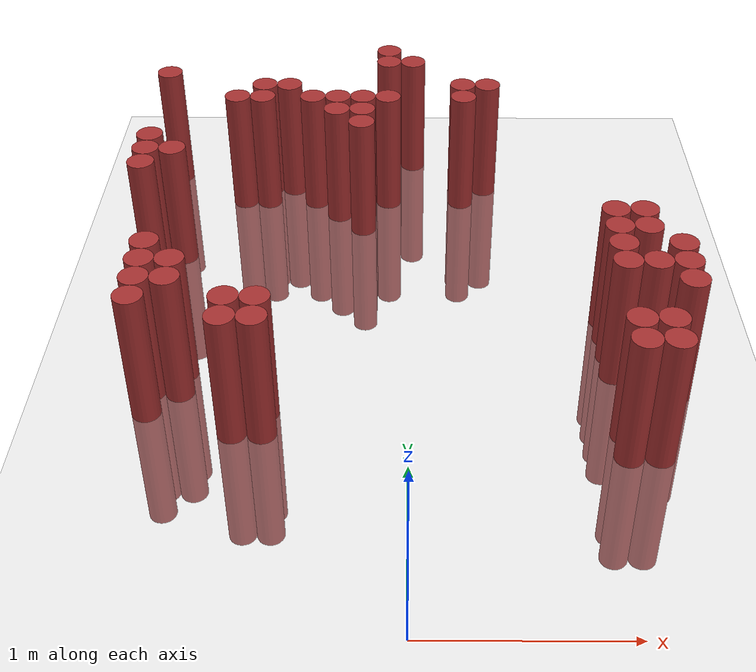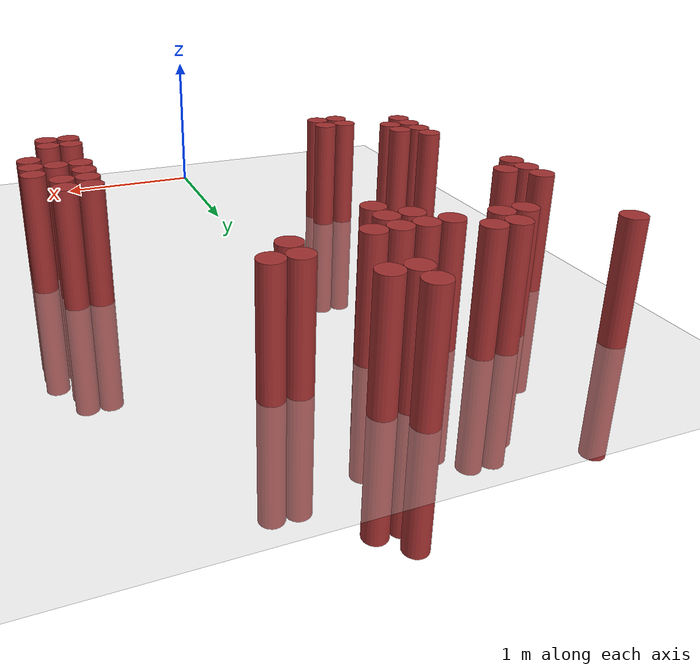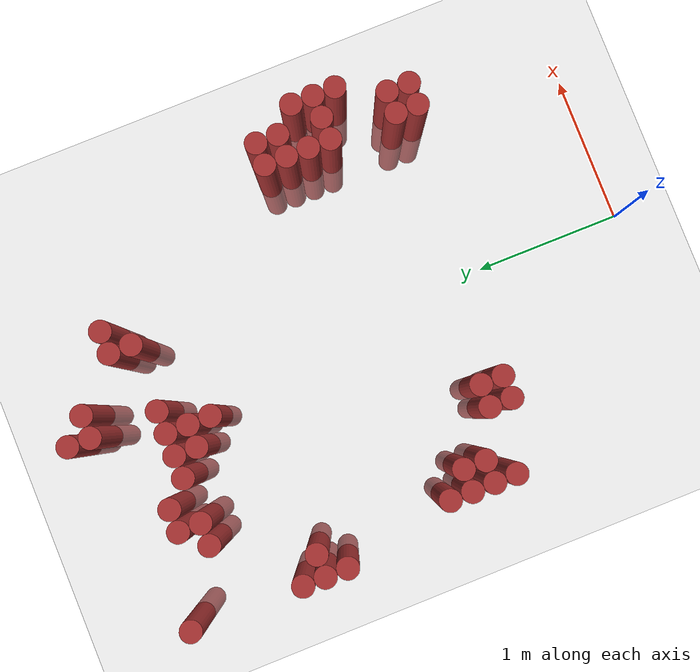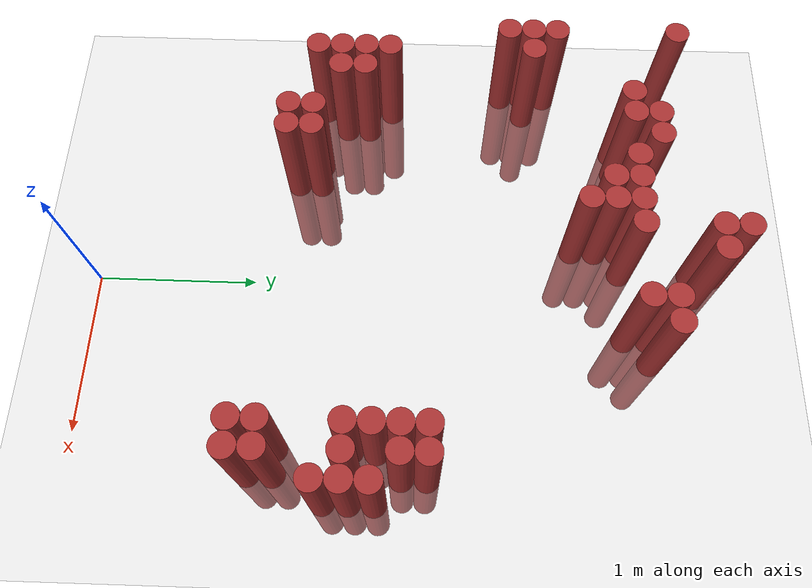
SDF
<sdf version="1.6">
 <world name="default">
  <model name="ground_plane">
   <static>1</static>
   <link name="link">
    <collision name="collision">
     <geometry><plane><normal>0 0 1</normal><size>100 100</size></plane></geometry>
     <surface><friction><ode><mu>100</mu><mu2>50</mu2></ode></friction></surface>
    </collision>
    <visual name="visual">
     <cast_shadows>0</cast_shadows>
     <geometry><plane><normal>0 0 1</normal><size>100 100</size></plane></geometry>
     <material>
      <script><uri>file://media/materials/scripts/gazebo.material</uri><name>Gazebo/Grey</name></script>
     </material>
    </visual>
   </link>
  </model>
  <model name="unit_cylinder_158">
   <static>1</static>
   <pose>-1.475000 2.575000 0.000000 0.000000 0.000000 0.000000</pose>
   <link name="link">
    <inertial>
     <mass>1</mass>
     <inertia><ixx>0.145833</ixx><ixy>0</ixy><ixz>0</ixz><iyy>0.145833</iyy><iyz>0</iyz><izz>0.125</izz></inertia>
    </inertial>
    <collision name="collision">
     <geometry><cylinder><radius>0.075000</radius><length>1.5</length></cylinder></geometry>
    </collision>
    <visual name="visual">
     <geometry><cylinder><radius>0.075000</radius><length>1.5</length></cylinder></geometry>
     <material>
      <ambient>0.648000 0.192000 0.192000 1</ambient>
      <diffuse>0.648000 0.192000 0.192000 1</diffuse>
     </material>
     <material>
      <script><name>Gazebo/Grey</name><uri>file://media/materials/scripts/gazebo.material</uri></script>
     </material>
    </visual>
   </link>
  </model>
  <model name="unit_cylinder_159">
   <static>1</static>
   <pose>-1.475000 2.725000 0.000000 0.000000 0.000000 0.000000</pose>
   <link name="link">
    <inertial>
     <mass>1</mass>
     <inertia><ixx>0.145833</ixx><ixy>0</ixy><ixz>0</ixz><iyy>0.145833</iyy><iyz>0</iyz><izz>0.125</izz></inertia>
    </inertial>
    <collision name="collision">
     <geometry><cylinder><radius>0.075000</radius><length>1.5</length></cylinder></geometry>
    </collision>
    <visual name="visual">
     <geometry><cylinder><radius>0.075000</radius><length>1.5</length></cylinder></geometry>
     <material>
      <ambient>0.648000 0.192000 0.192000 1</ambient>
      <diffuse>0.648000 0.192000 0.192000 1</diffuse>
     </material>
     <material>
      <script><name>Gazebo/Grey</name><uri>file://media/materials/scripts/gazebo.material</uri></script>
     </material>
    </visual>
   </link>
  </model>
  <model name="unit_cylinder_160">
   <static>1</static>
   <pose>-1.475000 2.875000 0.000000 0.000000 0.000000 0.000000</pose>
   <link name="link">
    <inertial>
     <mass>1</mass>
     <inertia><ixx>0.145833</ixx><ixy>0</ixy><ixz>0</ixz><iyy>0.145833</iyy><iyz>0</iyz><izz>0.125</izz></inertia>
    </inertial>
    <collision name="collision">
     <geometry><cylinder><radius>0.075000</radius><length>1.5</length></cylinder></geometry>
    </collision>
    <visual name="visual">
     <geometry><cylinder><radius>0.075000</radius><length>1.5</length></cylinder></geometry>
     <material>
      <ambient>0.648000 0.192000 0.192000 1</ambient>
      <diffuse>0.648000 0.192000 0.192000 1</diffuse>
     </material>
     <material>
      <script><name>Gazebo/Grey</name><uri>file://media/materials/scripts/gazebo.material</uri></script>
     </material>
    </visual>
   </link>
  </model>
  <model name="unit_cylinder_161">
   <static>1</static>
   <pose>-1.475000 3.625000 0.000000 0.000000 0.000000 0.000000</pose>
   <link name="link">
    <inertial>
     <mass>1</mass>
     <inertia><ixx>0.145833</ixx><ixy>0</ixy><ixz>0</ixz><iyy>0.145833</iyy><iyz>0</iyz><izz>0.125</izz></inertia>
    </inertial>
    <collision name="collision">
     <geometry><cylinder><radius>0.075000</radius><length>1.5</length></cylinder></geometry>
    </collision>
    <visual name="visual">
     <geometry><cylinder><radius>0.075000</radius><length>1.5</length></cylinder></geometry>
     <material>
      <ambient>0.648000 0.192000 0.192000 1</ambient>
      <diffuse>0.648000 0.192000 0.192000 1</diffuse>
     </material>
     <material>
      <script><name>Gazebo/Grey</name><uri>file://media/materials/scripts/gazebo.material</uri></script>
     </material>
    </visual>
   </link>
  </model>
  <model name="unit_cylinder_165">
   <static>1</static>
   <pose>-1.325000 1.375000 0.000000 0.000000 0.000000 0.000000</pose>
   <link name="link">
    <inertial>
     <mass>1</mass>
     <inertia><ixx>0.145833</ixx><ixy>0</ixy><ixz>0</ixz><iyy>0.145833</iyy><iyz>0</iyz><izz>0.125</izz></inertia>
    </inertial>
    <collision name="collision">
     <geometry><cylinder><radius>0.075000</radius><length>1.5</length></cylinder></geometry>
    </collision>
    <visual name="visual">
     <geometry><cylinder><radius>0.075000</radius><length>1.5</length></cylinder></geometry>
     <material>
      <ambient>0.648000 0.192000 0.192000 1</ambient>
      <diffuse>0.648000 0.192000 0.192000 1</diffuse>
     </material>
     <material>
      <script><name>Gazebo/Grey</name><uri>file://media/materials/scripts/gazebo.material</uri></script>
     </material>
    </visual>
   </link>
  </model>
  <model name="unit_cylinder_166">
   <static>1</static>
   <pose>-1.325000 1.525000 0.000000 0.000000 0.000000 0.000000</pose>
   <link name="link">
    <inertial>
     <mass>1</mass>
     <inertia><ixx>0.145833</ixx><ixy>0</ixy><ixz>0</ixz><iyy>0.145833</iyy><iyz>0</iyz><izz>0.125</izz></inertia>
    </inertial>
    <collision name="collision">
     <geometry><cylinder><radius>0.075000</radius><length>1.5</length></cylinder></geometry>
    </collision>
    <visual name="visual">
     <geometry><cylinder><radius>0.075000</radius><length>1.5</length></cylinder></geometry>
     <material>
      <ambient>0.648000 0.192000 0.192000 1</ambient>
      <diffuse>0.648000 0.192000 0.192000 1</diffuse>
     </material>
     <material>
      <script><name>Gazebo/Grey</name><uri>file://media/materials/scripts/gazebo.material</uri></script>
     </material>
    </visual>
   </link>
  </model>
  <model name="unit_cylinder_167">
   <static>1</static>
   <pose>-1.325000 1.675000 0.000000 0.000000 0.000000 0.000000</pose>
   <link name="link">
    <inertial>
     <mass>1</mass>
     <inertia><ixx>0.145833</ixx><ixy>0</ixy><ixz>0</ixz><iyy>0.145833</iyy><iyz>0</iyz><izz>0.125</izz></inertia>
    </inertial>
    <collision name="collision">
     <geometry><cylinder><radius>0.075000</radius><length>1.5</length></cylinder></geometry>
    </collision>
    <visual name="visual">
     <geometry><cylinder><radius>0.075000</radius><length>1.5</length></cylinder></geometry>
     <material>
      <ambient>0.648000 0.192000 0.192000 1</ambient>
      <diffuse>0.648000 0.192000 0.192000 1</diffuse>
     </material>
     <material>
      <script><name>Gazebo/Grey</name><uri>file://media/materials/scripts/gazebo.material</uri></script>
     </material>
    </visual>
   </link>
  </model>
  <model name="unit_cylinder_168">
   <static>1</static>
   <pose>-1.325000 1.825000 0.000000 0.000000 0.000000 0.000000</pose>
   <link name="link">
    <inertial>
     <mass>1</mass>
     <inertia><ixx>0.145833</ixx><ixy>0</ixy><ixz>0</ixz><iyy>0.145833</iyy><iyz>0</iyz><izz>0.125</izz></inertia>
    </inertial>
    <collision name="collision">
     <geometry><cylinder><radius>0.075000</radius><length>1.5</length></cylinder></geometry>
    </collision>
    <visual name="visual">
     <geometry><cylinder><radius>0.075000</radius><length>1.5</length></cylinder></geometry>
     <material>
      <ambient>0.648000 0.192000 0.192000 1</ambient>
      <diffuse>0.648000 0.192000 0.192000 1</diffuse>
     </material>
     <material>
      <script><name>Gazebo/Grey</name><uri>file://media/materials/scripts/gazebo.material</uri></script>
     </material>
    </visual>
   </link>
  </model>
  <model name="unit_cylinder_169">
   <static>1</static>
   <pose>-1.325000 2.725000 0.000000 0.000000 0.000000 0.000000</pose>
   <link name="link">
    <inertial>
     <mass>1</mass>
     <inertia><ixx>0.145833</ixx><ixy>0</ixy><ixz>0</ixz><iyy>0.145833</iyy><iyz>0</iyz><izz>0.125</izz></inertia>
    </inertial>
    <collision name="collision">
     <geometry><cylinder><radius>0.075000</radius><length>1.5</length></cylinder></geometry>
    </collision>
    <visual name="visual">
     <geometry><cylinder><radius>0.075000</radius><length>1.5</length></cylinder></geometry>
     <material>
      <ambient>0.648000 0.192000 0.192000 1</ambient>
      <diffuse>0.648000 0.192000 0.192000 1</diffuse>
     </material>
     <material>
      <script><name>Gazebo/Grey</name><uri>file://media/materials/scripts/gazebo.material</uri></script>
     </material>
    </visual>
   </link>
  </model>
  <model name="unit_cylinder_172">
   <static>1</static>
   <pose>-1.175000 1.525000 0.000000 0.000000 0.000000 0.000000</pose>
   <link name="link">
    <inertial>
     <mass>1</mass>
     <inertia><ixx>0.145833</ixx><ixy>0</ixy><ixz>0</ixz><iyy>0.145833</iyy><iyz>0</iyz><izz>0.125</izz></inertia>
    </inertial>
    <collision name="collision">
     <geometry><cylinder><radius>0.075000</radius><length>1.5</length></cylinder></geometry>
    </collision>
    <visual name="visual">
     <geometry><cylinder><radius>0.075000</radius><length>1.5</length></cylinder></geometry>
     <material>
      <ambient>0.648000 0.192000 0.192000 1</ambient>
      <diffuse>0.648000 0.192000 0.192000 1</diffuse>
     </material>
     <material>
      <script><name>Gazebo/Grey</name><uri>file://media/materials/scripts/gazebo.material</uri></script>
     </material>
    </visual>
   </link>
  </model>
  <model name="unit_cylinder_173">
   <static>1</static>
   <pose>-1.175000 1.675000 0.000000 0.000000 0.000000 0.000000</pose>
   <link name="link">
    <inertial>
     <mass>1</mass>
     <inertia><ixx>0.145833</ixx><ixy>0</ixy><ixz>0</ixz><iyy>0.145833</iyy><iyz>0</iyz><izz>0.125</izz></inertia>
    </inertial>
    <collision name="collision">
     <geometry><cylinder><radius>0.075000</radius><length>1.5</length></cylinder></geometry>
    </collision>
    <visual name="visual">
     <geometry><cylinder><radius>0.075000</radius><length>1.5</length></cylinder></geometry>
     <material>
      <ambient>0.648000 0.192000 0.192000 1</ambient>
      <diffuse>0.648000 0.192000 0.192000 1</diffuse>
     </material>
     <material>
      <script><name>Gazebo/Grey</name><uri>file://media/materials/scripts/gazebo.material</uri></script>
     </material>
    </visual>
   </link>
  </model>
  <model name="unit_cylinder_175">
   <static>1</static>
   <pose>-1.025000 3.325000 0.000000 0.000000 0.000000 0.000000</pose>
   <link name="link">
    <inertial>
     <mass>1</mass>
     <inertia><ixx>0.145833</ixx><ixy>0</ixy><ixz>0</ixz><iyy>0.145833</iyy><iyz>0</iyz><izz>0.125</izz></inertia>
    </inertial>
    <collision name="collision">
     <geometry><cylinder><radius>0.075000</radius><length>1.5</length></cylinder></geometry>
    </collision>
    <visual name="visual">
     <geometry><cylinder><radius>0.075000</radius><length>1.5</length></cylinder></geometry>
     <material>
      <ambient>0.648000 0.192000 0.192000 1</ambient>
      <diffuse>0.648000 0.192000 0.192000 1</diffuse>
     </material>
     <material>
      <script><name>Gazebo/Grey</name><uri>file://media/materials/scripts/gazebo.material</uri></script>
     </material>
    </visual>
   </link>
  </model>
  <model name="unit_cylinder_178">
   <static>1</static>
   <pose>-0.875000 1.225000 0.000000 0.000000 0.000000 0.000000</pose>
   <link name="link">
    <inertial>
     <mass>1</mass>
     <inertia><ixx>0.145833</ixx><ixy>0</ixy><ixz>0</ixz><iyy>0.145833</iyy><iyz>0</iyz><izz>0.125</izz></inertia>
    </inertial>
    <collision name="collision">
     <geometry><cylinder><radius>0.075000</radius><length>1.5</length></cylinder></geometry>
    </collision>
    <visual name="visual">
     <geometry><cylinder><radius>0.075000</radius><length>1.5</length></cylinder></geometry>
     <material>
      <ambient>0.648000 0.192000 0.192000 1</ambient>
      <diffuse>0.648000 0.192000 0.192000 1</diffuse>
     </material>
     <material>
      <script><name>Gazebo/Grey</name><uri>file://media/materials/scripts/gazebo.material</uri></script>
     </material>
    </visual>
   </link>
  </model>
  <model name="unit_cylinder_179">
   <static>1</static>
   <pose>-0.875000 1.375000 0.000000 0.000000 0.000000 0.000000</pose>
   <link name="link">
    <inertial>
     <mass>1</mass>
     <inertia><ixx>0.145833</ixx><ixy>0</ixy><ixz>0</ixz><iyy>0.145833</iyy><iyz>0</iyz><izz>0.125</izz></inertia>
    </inertial>
    <collision name="collision">
     <geometry><cylinder><radius>0.075000</radius><length>1.5</length></cylinder></geometry>
    </collision>
    <visual name="visual">
     <geometry><cylinder><radius>0.075000</radius><length>1.5</length></cylinder></geometry>
     <material>
      <ambient>0.648000 0.192000 0.192000 1</ambient>
      <diffuse>0.648000 0.192000 0.192000 1</diffuse>
     </material>
     <material>
      <script><name>Gazebo/Grey</name><uri>file://media/materials/scripts/gazebo.material</uri></script>
     </material>
    </visual>
   </link>
  </model>
  <model name="unit_cylinder_180">
   <static>1</static>
   <pose>-0.875000 3.325000 0.000000 0.000000 0.000000 0.000000</pose>
   <link name="link">
    <inertial>
     <mass>1</mass>
     <inertia><ixx>0.145833</ixx><ixy>0</ixy><ixz>0</ixz><iyy>0.145833</iyy><iyz>0</iyz><izz>0.125</izz></inertia>
    </inertial>
    <collision name="collision">
     <geometry><cylinder><radius>0.075000</radius><length>1.5</length></cylinder></geometry>
    </collision>
    <visual name="visual">
     <geometry><cylinder><radius>0.075000</radius><length>1.5</length></cylinder></geometry>
     <material>
      <ambient>0.648000 0.192000 0.192000 1</ambient>
      <diffuse>0.648000 0.192000 0.192000 1</diffuse>
     </material>
     <material>
      <script><name>Gazebo/Grey</name><uri>file://media/materials/scripts/gazebo.material</uri></script>
     </material>
    </visual>
   </link>
  </model>
  <model name="unit_cylinder_181">
   <static>1</static>
   <pose>-0.875000 3.475000 0.000000 0.000000 0.000000 0.000000</pose>
   <link name="link">
    <inertial>
     <mass>1</mass>
     <inertia><ixx>0.145833</ixx><ixy>0</ixy><ixz>0</ixz><iyy>0.145833</iyy><iyz>0</iyz><izz>0.125</izz></inertia>
    </inertial>
    <collision name="collision">
     <geometry><cylinder><radius>0.075000</radius><length>1.5</length></cylinder></geometry>
    </collision>
    <visual name="visual">
     <geometry><cylinder><radius>0.075000</radius><length>1.5</length></cylinder></geometry>
     <material>
      <ambient>0.648000 0.192000 0.192000 1</ambient>
      <diffuse>0.648000 0.192000 0.192000 1</diffuse>
     </material>
     <material>
      <script><name>Gazebo/Grey</name><uri>file://media/materials/scripts/gazebo.material</uri></script>
     </material>
    </visual>
   </link>
  </model>
  <model name="unit_cylinder_183">
   <static>1</static>
   <pose>-0.725000 1.225000 0.000000 0.000000 0.000000 0.000000</pose>
   <link name="link">
    <inertial>
     <mass>1</mass>
     <inertia><ixx>0.145833</ixx><ixy>0</ixy><ixz>0</ixz><iyy>0.145833</iyy><iyz>0</iyz><izz>0.125</izz></inertia>
    </inertial>
    <collision name="collision">
     <geometry><cylinder><radius>0.075000</radius><length>1.5</length></cylinder></geometry>
    </collision>
    <visual name="visual">
     <geometry><cylinder><radius>0.075000</radius><length>1.5</length></cylinder></geometry>
     <material>
      <ambient>0.648000 0.192000 0.192000 1</ambient>
      <diffuse>0.648000 0.192000 0.192000 1</diffuse>
     </material>
     <material>
      <script><name>Gazebo/Grey</name><uri>file://media/materials/scripts/gazebo.material</uri></script>
     </material>
    </visual>
   </link>
  </model>
  <model name="unit_cylinder_184">
   <static>1</static>
   <pose>-0.725000 1.375000 0.000000 0.000000 0.000000 0.000000</pose>
   <link name="link">
    <inertial>
     <mass>1</mass>
     <inertia><ixx>0.145833</ixx><ixy>0</ixy><ixz>0</ixz><iyy>0.145833</iyy><iyz>0</iyz><izz>0.125</izz></inertia>
    </inertial>
    <collision name="collision">
     <geometry><cylinder><radius>0.075000</radius><length>1.5</length></cylinder></geometry>
    </collision>
    <visual name="visual">
     <geometry><cylinder><radius>0.075000</radius><length>1.5</length></cylinder></geometry>
     <material>
      <ambient>0.648000 0.192000 0.192000 1</ambient>
      <diffuse>0.648000 0.192000 0.192000 1</diffuse>
     </material>
     <material>
      <script><name>Gazebo/Grey</name><uri>file://media/materials/scripts/gazebo.material</uri></script>
     </material>
    </visual>
   </link>
  </model>
  <model name="unit_cylinder_185">
   <static>1</static>
   <pose>-0.725000 3.475000 0.000000 0.000000 0.000000 0.000000</pose>
   <link name="link">
    <inertial>
     <mass>1</mass>
     <inertia><ixx>0.145833</ixx><ixy>0</ixy><ixz>0</ixz><iyy>0.145833</iyy><iyz>0</iyz><izz>0.125</izz></inertia>
    </inertial>
    <collision name="collision">
     <geometry><cylinder><radius>0.075000</radius><length>1.5</length></cylinder></geometry>
    </collision>
    <visual name="visual">
     <geometry><cylinder><radius>0.075000</radius><length>1.5</length></cylinder></geometry>
     <material>
      <ambient>0.648000 0.192000 0.192000 1</ambient>
      <diffuse>0.648000 0.192000 0.192000 1</diffuse>
     </material>
     <material>
      <script><name>Gazebo/Grey</name><uri>file://media/materials/scripts/gazebo.material</uri></script>
     </material>
    </visual>
   </link>
  </model>
  <model name="unit_cylinder_188">
   <static>1</static>
   <pose>-0.575000 3.325000 0.000000 0.000000 0.000000 0.000000</pose>
   <link name="link">
    <inertial>
     <mass>1</mass>
     <inertia><ixx>0.145833</ixx><ixy>0</ixy><ixz>0</ixz><iyy>0.145833</iyy><iyz>0</iyz><izz>0.125</izz></inertia>
    </inertial>
    <collision name="collision">
     <geometry><cylinder><radius>0.075000</radius><length>1.5</length></cylinder></geometry>
    </collision>
    <visual name="visual">
     <geometry><cylinder><radius>0.075000</radius><length>1.5</length></cylinder></geometry>
     <material>
      <ambient>0.648000 0.192000 0.192000 1</ambient>
      <diffuse>0.648000 0.192000 0.192000 1</diffuse>
     </material>
     <material>
      <script><name>Gazebo/Grey</name><uri>file://media/materials/scripts/gazebo.material</uri></script>
     </material>
    </visual>
   </link>
  </model>
  <model name="unit_cylinder_191">
   <static>1</static>
   <pose>-0.425000 3.175000 0.000000 0.000000 0.000000 0.000000</pose>
   <link name="link">
    <inertial>
     <mass>1</mass>
     <inertia><ixx>0.145833</ixx><ixy>0</ixy><ixz>0</ixz><iyy>0.145833</iyy><iyz>0</iyz><izz>0.125</izz></inertia>
    </inertial>
    <collision name="collision">
     <geometry><cylinder><radius>0.075000</radius><length>1.5</length></cylinder></geometry>
    </collision>
    <visual name="visual">
     <geometry><cylinder><radius>0.075000</radius><length>1.5</length></cylinder></geometry>
     <material>
      <ambient>0.648000 0.192000 0.192000 1</ambient>
      <diffuse>0.648000 0.192000 0.192000 1</diffuse>
     </material>
     <material>
      <script><name>Gazebo/Grey</name><uri>file://media/materials/scripts/gazebo.material</uri></script>
     </material>
    </visual>
   </link>
  </model>
  <model name="unit_cylinder_192">
   <static>1</static>
   <pose>-0.425000 3.325000 0.000000 0.000000 0.000000 0.000000</pose>
   <link name="link">
    <inertial>
     <mass>1</mass>
     <inertia><ixx>0.145833</ixx><ixy>0</ixy><ixz>0</ixz><iyy>0.145833</iyy><iyz>0</iyz><izz>0.125</izz></inertia>
    </inertial>
    <collision name="collision">
     <geometry><cylinder><radius>0.075000</radius><length>1.5</length></cylinder></geometry>
    </collision>
    <visual name="visual">
     <geometry><cylinder><radius>0.075000</radius><length>1.5</length></cylinder></geometry>
     <material>
      <ambient>0.648000 0.192000 0.192000 1</ambient>
      <diffuse>0.648000 0.192000 0.192000 1</diffuse>
     </material>
     <material>
      <script><name>Gazebo/Grey</name><uri>file://media/materials/scripts/gazebo.material</uri></script>
     </material>
    </visual>
   </link>
  </model>
  <model name="unit_cylinder_194">
   <static>1</static>
   <pose>-0.275000 3.025000 0.000000 0.000000 0.000000 0.000000</pose>
   <link name="link">
    <inertial>
     <mass>1</mass>
     <inertia><ixx>0.145833</ixx><ixy>0</ixy><ixz>0</ixz><iyy>0.145833</iyy><iyz>0</iyz><izz>0.125</izz></inertia>
    </inertial>
    <collision name="collision">
     <geometry><cylinder><radius>0.075000</radius><length>1.5</length></cylinder></geometry>
    </collision>
    <visual name="visual">
     <geometry><cylinder><radius>0.075000</radius><length>1.5</length></cylinder></geometry>
     <material>
      <ambient>0.648000 0.192000 0.192000 1</ambient>
      <diffuse>0.648000 0.192000 0.192000 1</diffuse>
     </material>
     <material>
      <script><name>Gazebo/Grey</name><uri>file://media/materials/scripts/gazebo.material</uri></script>
     </material>
    </visual>
   </link>
  </model>
  <model name="unit_cylinder_195">
   <static>1</static>
   <pose>-0.275000 3.175000 0.000000 0.000000 0.000000 0.000000</pose>
   <link name="link">
    <inertial>
     <mass>1</mass>
     <inertia><ixx>0.145833</ixx><ixy>0</ixy><ixz>0</ixz><iyy>0.145833</iyy><iyz>0</iyz><izz>0.125</izz></inertia>
    </inertial>
    <collision name="collision">
     <geometry><cylinder><radius>0.075000</radius><length>1.5</length></cylinder></geometry>
    </collision>
    <visual name="visual">
     <geometry><cylinder><radius>0.075000</radius><length>1.5</length></cylinder></geometry>
     <material>
      <ambient>0.648000 0.192000 0.192000 1</ambient>
      <diffuse>0.648000 0.192000 0.192000 1</diffuse>
     </material>
     <material>
      <script><name>Gazebo/Grey</name><uri>file://media/materials/scripts/gazebo.material</uri></script>
     </material>
    </visual>
   </link>
  </model>
  <model name="unit_cylinder_196">
   <static>1</static>
   <pose>-0.275000 3.325000 0.000000 0.000000 0.000000 0.000000</pose>
   <link name="link">
    <inertial>
     <mass>1</mass>
     <inertia><ixx>0.145833</ixx><ixy>0</ixy><ixz>0</ixz><iyy>0.145833</iyy><iyz>0</iyz><izz>0.125</izz></inertia>
    </inertial>
    <collision name="collision">
     <geometry><cylinder><radius>0.075000</radius><length>1.5</length></cylinder></geometry>
    </collision>
    <visual name="visual">
     <geometry><cylinder><radius>0.075000</radius><length>1.5</length></cylinder></geometry>
     <material>
      <ambient>0.648000 0.192000 0.192000 1</ambient>
      <diffuse>0.648000 0.192000 0.192000 1</diffuse>
     </material>
     <material>
      <script><name>Gazebo/Grey</name><uri>file://media/materials/scripts/gazebo.material</uri></script>
     </material>
    </visual>
   </link>
  </model>
  <model name="unit_cylinder_197">
   <static>1</static>
   <pose>-0.125000 3.325000 0.000000 0.000000 0.000000 0.000000</pose>
   <link name="link">
    <inertial>
     <mass>1</mass>
     <inertia><ixx>0.145833</ixx><ixy>0</ixy><ixz>0</ixz><iyy>0.145833</iyy><iyz>0</iyz><izz>0.125</izz></inertia>
    </inertial>
    <collision name="collision">
     <geometry><cylinder><radius>0.075000</radius><length>1.5</length></cylinder></geometry>
    </collision>
    <visual name="visual">
     <geometry><cylinder><radius>0.075000</radius><length>1.5</length></cylinder></geometry>
     <material>
      <ambient>0.648000 0.192000 0.192000 1</ambient>
      <diffuse>0.648000 0.192000 0.192000 1</diffuse>
     </material>
     <material>
      <script><name>Gazebo/Grey</name><uri>file://media/materials/scripts/gazebo.material</uri></script>
     </material>
    </visual>
   </link>
  </model>
  <model name="unit_cylinder_198">
   <static>1</static>
   <pose>-0.125000 3.775000 0.000000 0.000000 0.000000 0.000000</pose>
   <link name="link">
    <inertial>
     <mass>1</mass>
     <inertia><ixx>0.145833</ixx><ixy>0</ixy><ixz>0</ixz><iyy>0.145833</iyy><iyz>0</iyz><izz>0.125</izz></inertia>
    </inertial>
    <collision name="collision">
     <geometry><cylinder><radius>0.075000</radius><length>1.5</length></cylinder></geometry>
    </collision>
    <visual name="visual">
     <geometry><cylinder><radius>0.075000</radius><length>1.5</length></cylinder></geometry>
     <material>
      <ambient>0.648000 0.192000 0.192000 1</ambient>
      <diffuse>0.648000 0.192000 0.192000 1</diffuse>
     </material>
     <material>
      <script><name>Gazebo/Grey</name><uri>file://media/materials/scripts/gazebo.material</uri></script>
     </material>
    </visual>
   </link>
  </model>
  <model name="unit_cylinder_199">
   <static>1</static>
   <pose>-0.125000 3.925000 0.000000 0.000000 0.000000 0.000000</pose>
   <link name="link">
    <inertial>
     <mass>1</mass>
     <inertia><ixx>0.145833</ixx><ixy>0</ixy><ixz>0</ixz><iyy>0.145833</iyy><iyz>0</iyz><izz>0.125</izz></inertia>
    </inertial>
    <collision name="collision">
     <geometry><cylinder><radius>0.075000</radius><length>1.5</length></cylinder></geometry>
    </collision>
    <visual name="visual">
     <geometry><cylinder><radius>0.075000</radius><length>1.5</length></cylinder></geometry>
     <material>
      <ambient>0.648000 0.192000 0.192000 1</ambient>
      <diffuse>0.648000 0.192000 0.192000 1</diffuse>
     </material>
     <material>
      <script><name>Gazebo/Grey</name><uri>file://media/materials/scripts/gazebo.material</uri></script>
     </material>
    </visual>
   </link>
  </model>
  <model name="unit_cylinder_200">
   <static>1</static>
   <pose>0.025000 3.775000 0.000000 0.000000 0.000000 0.000000</pose>
   <link name="link">
    <inertial>
     <mass>1</mass>
     <inertia><ixx>0.145833</ixx><ixy>0</ixy><ixz>0</ixz><iyy>0.145833</iyy><iyz>0</iyz><izz>0.125</izz></inertia>
    </inertial>
    <collision name="collision">
     <geometry><cylinder><radius>0.075000</radius><length>1.5</length></cylinder></geometry>
    </collision>
    <visual name="visual">
     <geometry><cylinder><radius>0.075000</radius><length>1.5</length></cylinder></geometry>
     <material>
      <ambient>0.648000 0.192000 0.192000 1</ambient>
      <diffuse>0.648000 0.192000 0.192000 1</diffuse>
     </material>
     <material>
      <script><name>Gazebo/Grey</name><uri>file://media/materials/scripts/gazebo.material</uri></script>
     </material>
    </visual>
   </link>
  </model>
  <model name="unit_cylinder_201">
   <static>1</static>
   <pose>0.325000 3.325000 0.000000 0.000000 0.000000 0.000000</pose>
   <link name="link">
    <inertial>
     <mass>1</mass>
     <inertia><ixx>0.145833</ixx><ixy>0</ixy><ixz>0</ixz><iyy>0.145833</iyy><iyz>0</iyz><izz>0.125</izz></inertia>
    </inertial>
    <collision name="collision">
     <geometry><cylinder><radius>0.075000</radius><length>1.5</length></cylinder></geometry>
    </collision>
    <visual name="visual">
     <geometry><cylinder><radius>0.075000</radius><length>1.5</length></cylinder></geometry>
     <material>
      <ambient>0.648000 0.192000 0.192000 1</ambient>
      <diffuse>0.648000 0.192000 0.192000 1</diffuse>
     </material>
     <material>
      <script><name>Gazebo/Grey</name><uri>file://media/materials/scripts/gazebo.material</uri></script>
     </material>
    </visual>
   </link>
  </model>
  <model name="unit_cylinder_202">
   <static>1</static>
   <pose>0.325000 3.475000 0.000000 0.000000 0.000000 0.000000</pose>
   <link name="link">
    <inertial>
     <mass>1</mass>
     <inertia><ixx>0.145833</ixx><ixy>0</ixy><ixz>0</ixz><iyy>0.145833</iyy><iyz>0</iyz><izz>0.125</izz></inertia>
    </inertial>
    <collision name="collision">
     <geometry><cylinder><radius>0.075000</radius><length>1.5</length></cylinder></geometry>
    </collision>
    <visual name="visual">
     <geometry><cylinder><radius>0.075000</radius><length>1.5</length></cylinder></geometry>
     <material>
      <ambient>0.648000 0.192000 0.192000 1</ambient>
      <diffuse>0.648000 0.192000 0.192000 1</diffuse>
     </material>
     <material>
      <script><name>Gazebo/Grey</name><uri>file://media/materials/scripts/gazebo.material</uri></script>
     </material>
    </visual>
   </link>
  </model>
  <model name="unit_cylinder_203">
   <static>1</static>
   <pose>0.475000 3.475000 0.000000 0.000000 0.000000 0.000000</pose>
   <link name="link">
    <inertial>
     <mass>1</mass>
     <inertia><ixx>0.145833</ixx><ixy>0</ixy><ixz>0</ixz><iyy>0.145833</iyy><iyz>0</iyz><izz>0.125</izz></inertia>
    </inertial>
    <collision name="collision">
     <geometry><cylinder><radius>0.075000</radius><length>1.5</length></cylinder></geometry>
    </collision>
    <visual name="visual">
     <geometry><cylinder><radius>0.075000</radius><length>1.5</length></cylinder></geometry>
     <material>
      <ambient>0.648000 0.192000 0.192000 1</ambient>
      <diffuse>0.648000 0.192000 0.192000 1</diffuse>
     </material>
     <material>
      <script><name>Gazebo/Grey</name><uri>file://media/materials/scripts/gazebo.material</uri></script>
     </material>
    </visual>
   </link>
  </model>
  <model name="unit_cylinder_205">
   <static>1</static>
   <pose>1.075000 1.075000 0.000000 0.000000 0.000000 0.000000</pose>
   <link name="link">
    <inertial>
     <mass>1</mass>
     <inertia><ixx>0.145833</ixx><ixy>0</ixy><ixz>0</ixz><iyy>0.145833</iyy><iyz>0</iyz><izz>0.125</izz></inertia>
    </inertial>
    <collision name="collision">
     <geometry><cylinder><radius>0.075000</radius><length>1.5</length></cylinder></geometry>
    </collision>
    <visual name="visual">
     <geometry><cylinder><radius>0.075000</radius><length>1.5</length></cylinder></geometry>
     <material>
      <ambient>0.648000 0.192000 0.192000 1</ambient>
      <diffuse>0.648000 0.192000 0.192000 1</diffuse>
     </material>
     <material>
      <script><name>Gazebo/Grey</name><uri>file://media/materials/scripts/gazebo.material</uri></script>
     </material>
    </visual>
   </link>
  </model>
  <model name="unit_cylinder_206">
   <static>1</static>
   <pose>1.075000 1.225000 0.000000 0.000000 0.000000 0.000000</pose>
   <link name="link">
    <inertial>
     <mass>1</mass>
     <inertia><ixx>0.145833</ixx><ixy>0</ixy><ixz>0</ixz><iyy>0.145833</iyy><iyz>0</iyz><izz>0.125</izz></inertia>
    </inertial>
    <collision name="collision">
     <geometry><cylinder><radius>0.075000</radius><length>1.5</length></cylinder></geometry>
    </collision>
    <visual name="visual">
     <geometry><cylinder><radius>0.075000</radius><length>1.5</length></cylinder></geometry>
     <material>
      <ambient>0.648000 0.192000 0.192000 1</ambient>
      <diffuse>0.648000 0.192000 0.192000 1</diffuse>
     </material>
     <material>
      <script><name>Gazebo/Grey</name><uri>file://media/materials/scripts/gazebo.material</uri></script>
     </material>
    </visual>
   </link>
  </model>
  <model name="unit_cylinder_207">
   <static>1</static>
   <pose>1.075000 1.675000 0.000000 0.000000 0.000000 0.000000</pose>
   <link name="link">
    <inertial>
     <mass>1</mass>
     <inertia><ixx>0.145833</ixx><ixy>0</ixy><ixz>0</ixz><iyy>0.145833</iyy><iyz>0</iyz><izz>0.125</izz></inertia>
    </inertial>
    <collision name="collision">
     <geometry><cylinder><radius>0.075000</radius><length>1.5</length></cylinder></geometry>
    </collision>
    <visual name="visual">
     <geometry><cylinder><radius>0.075000</radius><length>1.5</length></cylinder></geometry>
     <material>
      <ambient>0.648000 0.192000 0.192000 1</ambient>
      <diffuse>0.648000 0.192000 0.192000 1</diffuse>
     </material>
     <material>
      <script><name>Gazebo/Grey</name><uri>file://media/materials/scripts/gazebo.material</uri></script>
     </material>
    </visual>
   </link>
  </model>
  <model name="unit_cylinder_208">
   <static>1</static>
   <pose>1.075000 1.825000 0.000000 0.000000 0.000000 0.000000</pose>
   <link name="link">
    <inertial>
     <mass>1</mass>
     <inertia><ixx>0.145833</ixx><ixy>0</ixy><ixz>0</ixz><iyy>0.145833</iyy><iyz>0</iyz><izz>0.125</izz></inertia>
    </inertial>
    <collision name="collision">
     <geometry><cylinder><radius>0.075000</radius><length>1.5</length></cylinder></geometry>
    </collision>
    <visual name="visual">
     <geometry><cylinder><radius>0.075000</radius><length>1.5</length></cylinder></geometry>
     <material>
      <ambient>0.648000 0.192000 0.192000 1</ambient>
      <diffuse>0.648000 0.192000 0.192000 1</diffuse>
     </material>
     <material>
      <script><name>Gazebo/Grey</name><uri>file://media/materials/scripts/gazebo.material</uri></script>
     </material>
    </visual>
   </link>
  </model>
  <model name="unit_cylinder_209">
   <static>1</static>
   <pose>1.075000 1.975000 0.000000 0.000000 0.000000 0.000000</pose>
   <link name="link">
    <inertial>
     <mass>1</mass>
     <inertia><ixx>0.145833</ixx><ixy>0</ixy><ixz>0</ixz><iyy>0.145833</iyy><iyz>0</iyz><izz>0.125</izz></inertia>
    </inertial>
    <collision name="collision">
     <geometry><cylinder><radius>0.075000</radius><length>1.5</length></cylinder></geometry>
    </collision>
    <visual name="visual">
     <geometry><cylinder><radius>0.075000</radius><length>1.5</length></cylinder></geometry>
     <material>
      <ambient>0.648000 0.192000 0.192000 1</ambient>
      <diffuse>0.648000 0.192000 0.192000 1</diffuse>
     </material>
     <material>
      <script><name>Gazebo/Grey</name><uri>file://media/materials/scripts/gazebo.material</uri></script>
     </material>
    </visual>
   </link>
  </model>
  <model name="unit_cylinder_210">
   <static>1</static>
   <pose>1.075000 2.125000 0.000000 0.000000 0.000000 0.000000</pose>
   <link name="link">
    <inertial>
     <mass>1</mass>
     <inertia><ixx>0.145833</ixx><ixy>0</ixy><ixz>0</ixz><iyy>0.145833</iyy><iyz>0</iyz><izz>0.125</izz></inertia>
    </inertial>
    <collision name="collision">
     <geometry><cylinder><radius>0.075000</radius><length>1.5</length></cylinder></geometry>
    </collision>
    <visual name="visual">
     <geometry><cylinder><radius>0.075000</radius><length>1.5</length></cylinder></geometry>
     <material>
      <ambient>0.648000 0.192000 0.192000 1</ambient>
      <diffuse>0.648000 0.192000 0.192000 1</diffuse>
     </material>
     <material>
      <script><name>Gazebo/Grey</name><uri>file://media/materials/scripts/gazebo.material</uri></script>
     </material>
    </visual>
   </link>
  </model>
  <model name="unit_cylinder_211">
   <static>1</static>
   <pose>1.225000 1.075000 0.000000 0.000000 0.000000 0.000000</pose>
   <link name="link">
    <inertial>
     <mass>1</mass>
     <inertia><ixx>0.145833</ixx><ixy>0</ixy><ixz>0</ixz><iyy>0.145833</iyy><iyz>0</iyz><izz>0.125</izz></inertia>
    </inertial>
    <collision name="collision">
     <geometry><cylinder><radius>0.075000</radius><length>1.5</length></cylinder></geometry>
    </collision>
    <visual name="visual">
     <geometry><cylinder><radius>0.075000</radius><length>1.5</length></cylinder></geometry>
     <material>
      <ambient>0.648000 0.192000 0.192000 1</ambient>
      <diffuse>0.648000 0.192000 0.192000 1</diffuse>
     </material>
     <material>
      <script><name>Gazebo/Grey</name><uri>file://media/materials/scripts/gazebo.material</uri></script>
     </material>
    </visual>
   </link>
  </model>
  <model name="unit_cylinder_212">
   <static>1</static>
   <pose>1.225000 1.225000 0.000000 0.000000 0.000000 0.000000</pose>
   <link name="link">
    <inertial>
     <mass>1</mass>
     <inertia><ixx>0.145833</ixx><ixy>0</ixy><ixz>0</ixz><iyy>0.145833</iyy><iyz>0</iyz><izz>0.125</izz></inertia>
    </inertial>
    <collision name="collision">
     <geometry><cylinder><radius>0.075000</radius><length>1.5</length></cylinder></geometry>
    </collision>
    <visual name="visual">
     <geometry><cylinder><radius>0.075000</radius><length>1.5</length></cylinder></geometry>
     <material>
      <ambient>0.648000 0.192000 0.192000 1</ambient>
      <diffuse>0.648000 0.192000 0.192000 1</diffuse>
     </material>
     <material>
      <script><name>Gazebo/Grey</name><uri>file://media/materials/scripts/gazebo.material</uri></script>
     </material>
    </visual>
   </link>
  </model>
  <model name="unit_cylinder_213">
   <static>1</static>
   <pose>1.225000 1.675000 0.000000 0.000000 0.000000 0.000000</pose>
   <link name="link">
    <inertial>
     <mass>1</mass>
     <inertia><ixx>0.145833</ixx><ixy>0</ixy><ixz>0</ixz><iyy>0.145833</iyy><iyz>0</iyz><izz>0.125</izz></inertia>
    </inertial>
    <collision name="collision">
     <geometry><cylinder><radius>0.075000</radius><length>1.5</length></cylinder></geometry>
    </collision>
    <visual name="visual">
     <geometry><cylinder><radius>0.075000</radius><length>1.5</length></cylinder></geometry>
     <material>
      <ambient>0.648000 0.192000 0.192000 1</ambient>
      <diffuse>0.648000 0.192000 0.192000 1</diffuse>
     </material>
     <material>
      <script><name>Gazebo/Grey</name><uri>file://media/materials/scripts/gazebo.material</uri></script>
     </material>
    </visual>
   </link>
  </model>
  <model name="unit_cylinder_214">
   <static>1</static>
   <pose>1.225000 1.975000 0.000000 0.000000 0.000000 0.000000</pose>
   <link name="link">
    <inertial>
     <mass>1</mass>
     <inertia><ixx>0.145833</ixx><ixy>0</ixy><ixz>0</ixz><iyy>0.145833</iyy><iyz>0</iyz><izz>0.125</izz></inertia>
    </inertial>
    <collision name="collision">
     <geometry><cylinder><radius>0.075000</radius><length>1.5</length></cylinder></geometry>
    </collision>
    <visual name="visual">
     <geometry><cylinder><radius>0.075000</radius><length>1.5</length></cylinder></geometry>
     <material>
      <ambient>0.648000 0.192000 0.192000 1</ambient>
      <diffuse>0.648000 0.192000 0.192000 1</diffuse>
     </material>
     <material>
      <script><name>Gazebo/Grey</name><uri>file://media/materials/scripts/gazebo.material</uri></script>
     </material>
    </visual>
   </link>
  </model>
  <model name="unit_cylinder_215">
   <static>1</static>
   <pose>1.225000 2.125000 0.000000 0.000000 0.000000 0.000000</pose>
   <link name="link">
    <inertial>
     <mass>1</mass>
     <inertia><ixx>0.145833</ixx><ixy>0</ixy><ixz>0</ixz><iyy>0.145833</iyy><iyz>0</iyz><izz>0.125</izz></inertia>
    </inertial>
    <collision name="collision">
     <geometry><cylinder><radius>0.075000</radius><length>1.5</length></cylinder></geometry>
    </collision>
    <visual name="visual">
     <geometry><cylinder><radius>0.075000</radius><length>1.5</length></cylinder></geometry>
     <material>
      <ambient>0.648000 0.192000 0.192000 1</ambient>
      <diffuse>0.648000 0.192000 0.192000 1</diffuse>
     </material>
     <material>
      <script><name>Gazebo/Grey</name><uri>file://media/materials/scripts/gazebo.material</uri></script>
     </material>
    </visual>
   </link>
  </model>
  <model name="unit_cylinder_217">
   <static>1</static>
   <pose>1.375000 1.525000 0.000000 0.000000 0.000000 0.000000</pose>
   <link name="link">
    <inertial>
     <mass>1</mass>
     <inertia><ixx>0.145833</ixx><ixy>0</ixy><ixz>0</ixz><iyy>0.145833</iyy><iyz>0</iyz><izz>0.125</izz></inertia>
    </inertial>
    <collision name="collision">
     <geometry><cylinder><radius>0.075000</radius><length>1.5</length></cylinder></geometry>
    </collision>
    <visual name="visual">
     <geometry><cylinder><radius>0.075000</radius><length>1.5</length></cylinder></geometry>
     <material>
      <ambient>0.648000 0.192000 0.192000 1</ambient>
      <diffuse>0.648000 0.192000 0.192000 1</diffuse>
     </material>
     <material>
      <script><name>Gazebo/Grey</name><uri>file://media/materials/scripts/gazebo.material</uri></script>
     </material>
    </visual>
   </link>
  </model>
  <model name="unit_cylinder_218">
   <static>1</static>
   <pose>1.375000 1.675000 0.000000 0.000000 0.000000 0.000000</pose>
   <link name="link">
    <inertial>
     <mass>1</mass>
     <inertia><ixx>0.145833</ixx><ixy>0</ixy><ixz>0</ixz><iyy>0.145833</iyy><iyz>0</iyz><izz>0.125</izz></inertia>
    </inertial>
    <collision name="collision">
     <geometry><cylinder><radius>0.075000</radius><length>1.5</length></cylinder></geometry>
    </collision>
    <visual name="visual">
     <geometry><cylinder><radius>0.075000</radius><length>1.5</length></cylinder></geometry>
     <material>
      <ambient>0.648000 0.192000 0.192000 1</ambient>
      <diffuse>0.648000 0.192000 0.192000 1</diffuse>
     </material>
     <material>
      <script><name>Gazebo/Grey</name><uri>file://media/materials/scripts/gazebo.material</uri></script>
     </material>
    </visual>
   </link>
  </model>
  <model name="unit_cylinder_219">
   <static>1</static>
   <pose>1.375000 1.825000 0.000000 0.000000 0.000000 0.000000</pose>
   <link name="link">
    <inertial>
     <mass>1</mass>
     <inertia><ixx>0.145833</ixx><ixy>0</ixy><ixz>0</ixz><iyy>0.145833</iyy><iyz>0</iyz><izz>0.125</izz></inertia>
    </inertial>
    <collision name="collision">
     <geometry><cylinder><radius>0.075000</radius><length>1.5</length></cylinder></geometry>
    </collision>
    <visual name="visual">
     <geometry><cylinder><radius>0.075000</radius><length>1.5</length></cylinder></geometry>
     <material>
      <ambient>0.648000 0.192000 0.192000 1</ambient>
      <diffuse>0.648000 0.192000 0.192000 1</diffuse>
     </material>
     <material>
      <script><name>Gazebo/Grey</name><uri>file://media/materials/scripts/gazebo.material</uri></script>
     </material>
    </visual>
   </link>
  </model>
 </world>
</sdf>
